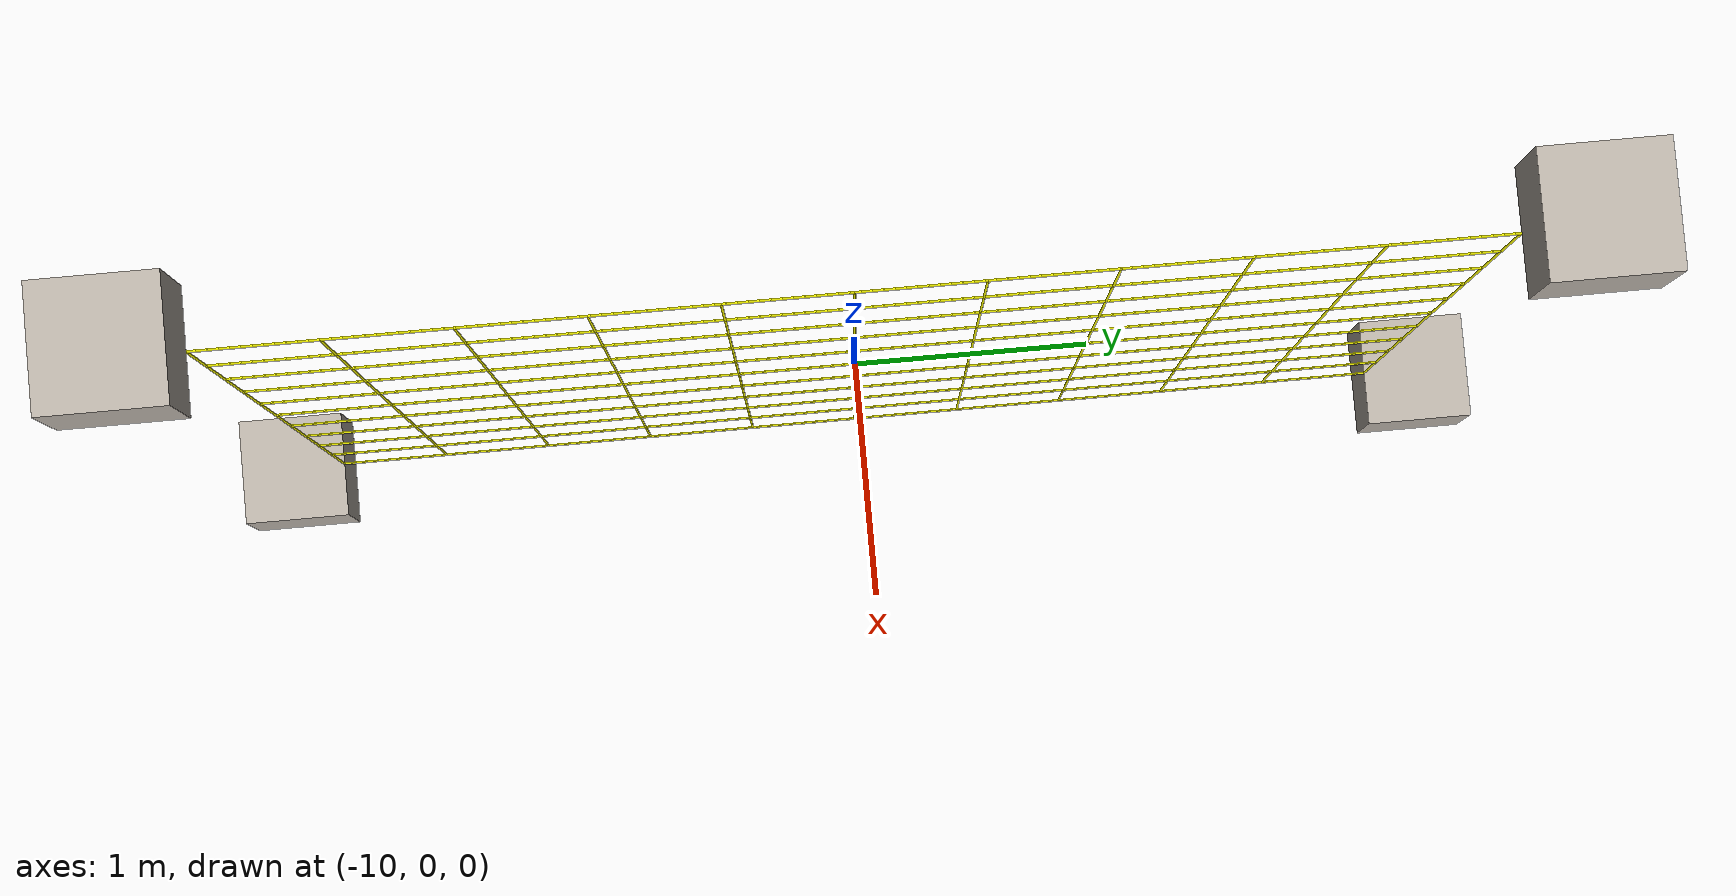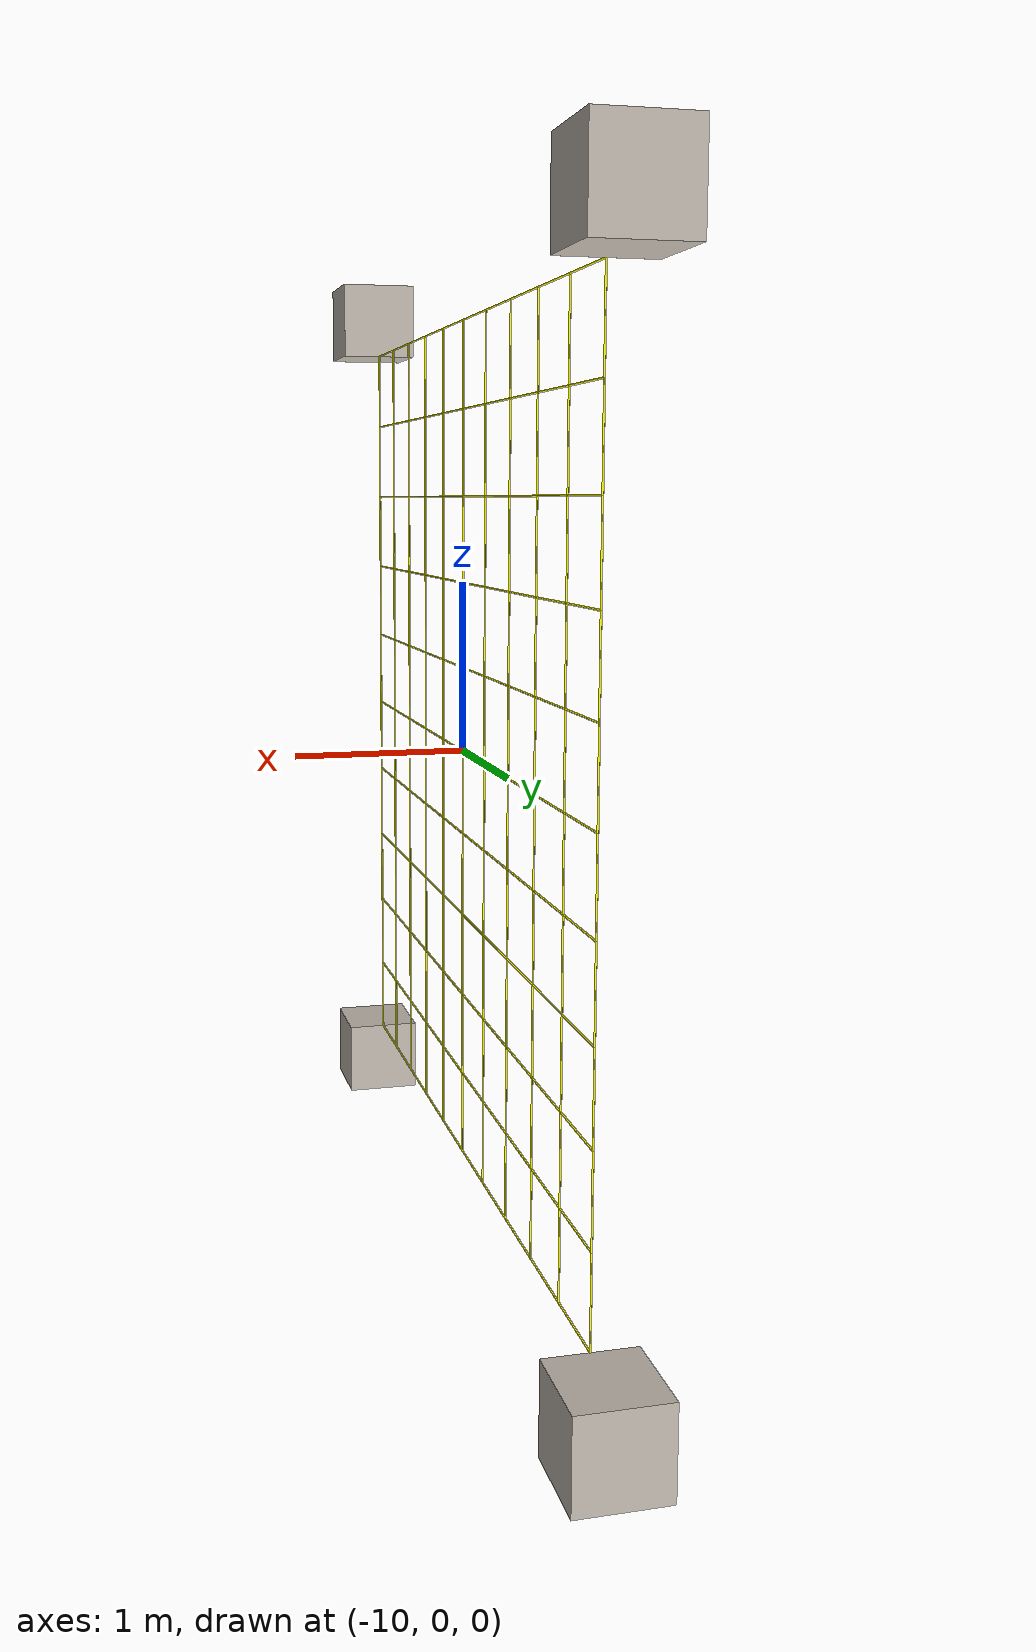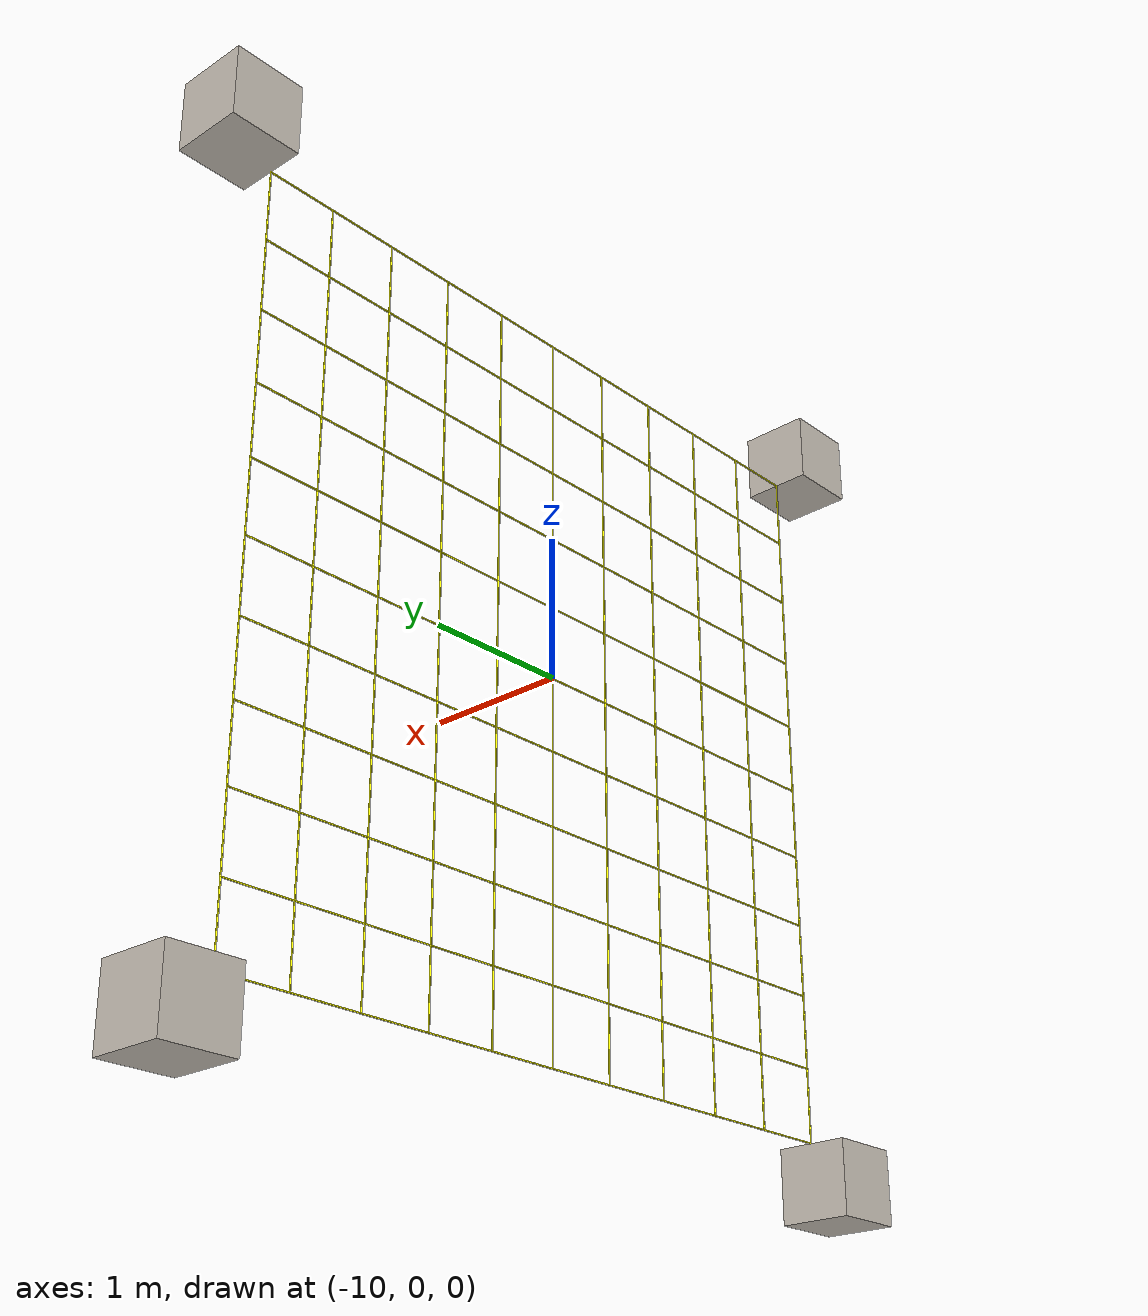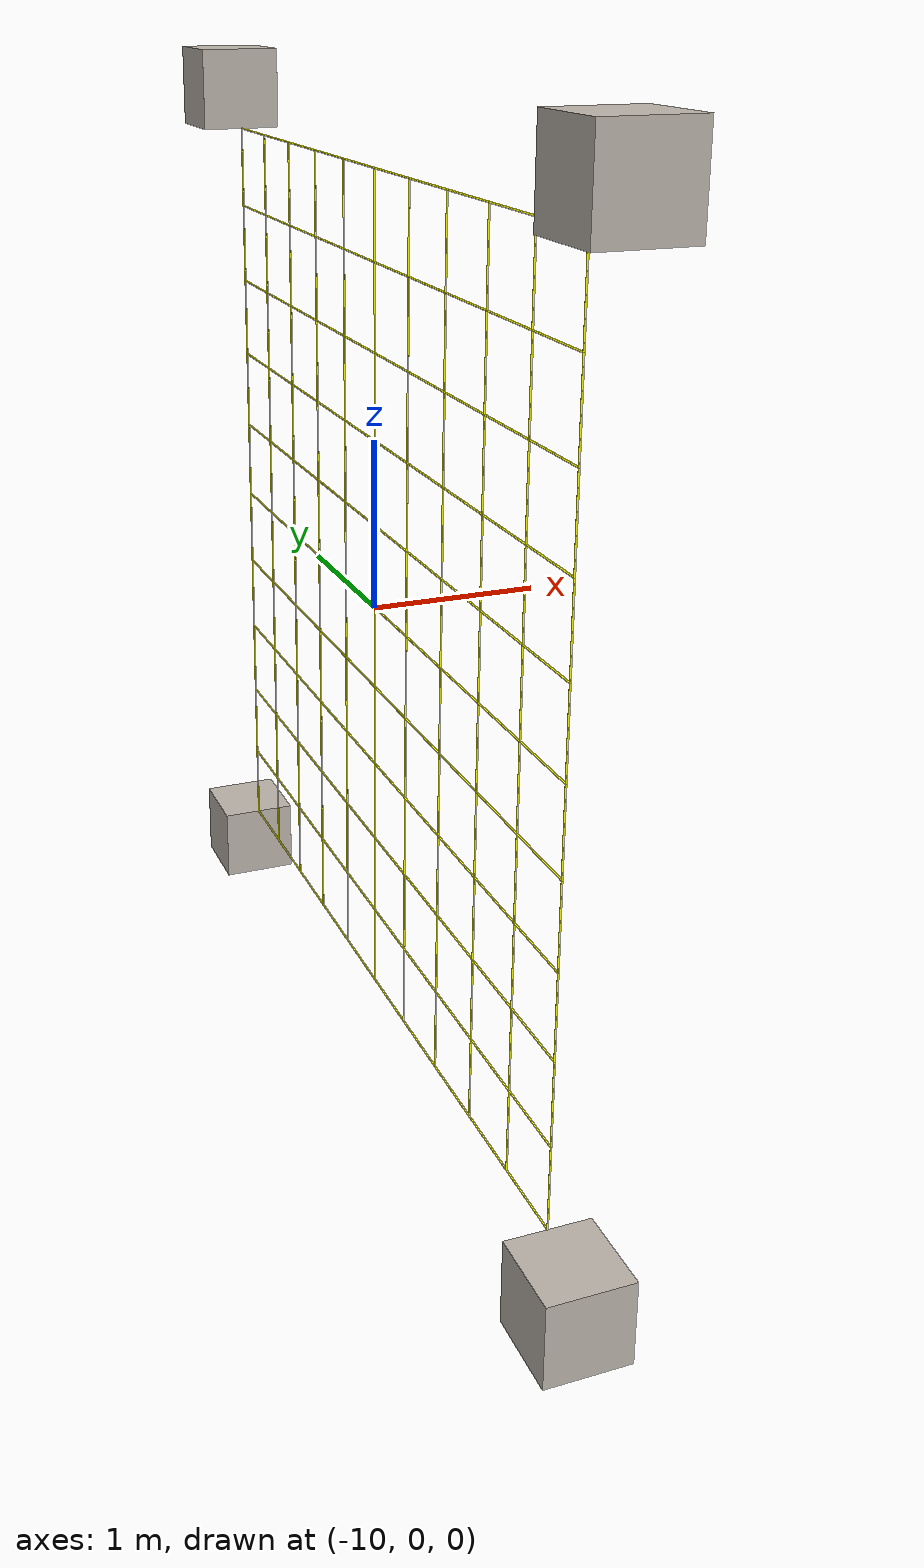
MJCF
<?xml version='1.0' encoding='utf-8'?>
<mujoco><option integrator="RK4" timestep="0.001" solver="PGS" /><include file="scene.xml" /><option gravity="0 0 0"><flag contact="disable" /></option><default><tendon limited="true" width="0.005" rgba="1 1 0 1" damping="0.07" stiffness="40" /></default><visual><global azimuth="-90" elevation="-40" /><headlight diffuse="1 1 1" /></visual><worldbody><camera name="closeup" pos="10 10 10" xyaxes="-0.4 0.9 0.000 -0.2 -0.1 0.9" /><body name="MU_0" pos="-10 2.75 2.75"><joint name="sat_0" type="free" /><inertial pos="-10 0 0" diaginertia="0.4167 0.4167 0.4167" mass="10" /><geom type="box" size=".25 .25 .25" material="satellite" mass="10" /><site pos="0 -0.25 -0.25" name="MU_0" type="sphere" size="0.0005" /></body><body name="MU_1" pos="-10 -2.75 2.75"><joint name="sat_1" type="free" /><inertial pos="-10 0 0" diaginertia="0.4167 0.4167 0.4167" mass="10" /><geom type="box" size=".25 .25 .25" material="satellite" mass="10" /><site pos="0 0.25 -0.25" name="MU_1" type="sphere" size="0.0005" /></body><body name="MU_2" pos="-10 2.75 -2.75"><joint name="sat_2" type="free" /><inertial pos="-10 0 0" diaginertia="0.4167 0.4167 0.4167" mass="10" /><geom type="box" size=".25 .25 .25" material="satellite" mass="10" /><site pos="0 -0.25 0.25" name="MU_2" type="sphere" size="0.0005" /></body><body name="MU_3" pos="-10 -2.75 -2.75"><joint name="sat_3" type="free" /><inertial pos="-10 0 0" diaginertia="0.4167 0.4167 0.4167" mass="10" /><geom type="box" size=".25 .25 .25" material="satellite" mass="10" /><site pos="0 0.25 0.25" name="MU_3" type="sphere" size="0.0005" /></body><body name="node_0_1" pos="-10 2.0 2.5"><joint type="free" /><geom type="sphere" size="0.0005" rgba="1 0 0 1" mass="0.0011" /><site name="node_0_1" type="sphere" size="0.0005" /></body><body name="node_0_2" pos="-10 1.5 2.5"><joint type="free" /><geom type="sphere" size="0.0005" rgba="1 0 0 1" mass="0.0011" /><site name="node_0_2" type="sphere" size="0.0005" /></body><body name="node_0_3" pos="-10 1.0 2.5"><joint type="free" /><geom type="sphere" size="0.0005" rgba="1 0 0 1" mass="0.0011" /><site name="node_0_3" type="sphere" size="0.0005" /></body><body name="node_0_4" pos="-10 0.5 2.5"><joint type="free" /><geom type="sphere" size="0.0005" rgba="1 0 0 1" mass="0.0011" /><site name="node_0_4" type="sphere" size="0.0005" /></body><body name="node_0_5" pos="-10 0.0 2.5"><joint type="free" /><geom type="sphere" size="0.0005" rgba="1 0 0 1" mass="0.0011" /><site name="node_0_5" type="sphere" size="0.0005" /></body><body name="node_0_6" pos="-10 -0.5 2.5"><joint type="free" /><geom type="sphere" size="0.0005" rgba="1 0 0 1" mass="0.0011" /><site name="node_0_6" type="sphere" size="0.0005" /></body><body name="node_0_7" pos="-10 -1.0 2.5"><joint type="free" /><geom type="sphere" size="0.0005" rgba="1 0 0 1" mass="0.0011" /><site name="node_0_7" type="sphere" size="0.0005" /></body><body name="node_0_8" pos="-10 -1.5 2.5"><joint type="free" /><geom type="sphere" size="0.0005" rgba="1 0 0 1" mass="0.0011" /><site name="node_0_8" type="sphere" size="0.0005" /></body><body name="node_0_9" pos="-10 -2.0 2.5"><joint type="free" /><geom type="sphere" size="0.0005" rgba="1 0 0 1" mass="0.0011" /><site name="node_0_9" type="sphere" size="0.0005" /></body><body name="node_1_0" pos="-10 2.5 2.0"><joint type="free" /><geom type="sphere" size="0.0005" rgba="1 0 0 1" mass="0.0011" /><site name="node_1_0" type="sphere" size="0.0005" /></body><body name="node_1_1" pos="-10 2.0 2.0"><joint type="free" /><geom type="sphere" size="0.0005" rgba="1 0 0 1" mass="0.0011" /><site name="node_1_1" type="sphere" size="0.0005" /></body><body name="node_1_2" pos="-10 1.5 2.0"><joint type="free" /><geom type="sphere" size="0.0005" rgba="1 0 0 1" mass="0.0011" /><site name="node_1_2" type="sphere" size="0.0005" /></body><body name="node_1_3" pos="-10 1.0 2.0"><joint type="free" /><geom type="sphere" size="0.0005" rgba="1 0 0 1" mass="0.0011" /><site name="node_1_3" type="sphere" size="0.0005" /></body><body name="node_1_4" pos="-10 0.5 2.0"><joint type="free" /><geom type="sphere" size="0.0005" rgba="1 0 0 1" mass="0.0011" /><site name="node_1_4" type="sphere" size="0.0005" /></body><body name="node_1_5" pos="-10 0.0 2.0"><joint type="free" /><geom type="sphere" size="0.0005" rgba="1 0 0 1" mass="0.0011" /><site name="node_1_5" type="sphere" size="0.0005" /></body><body name="node_1_6" pos="-10 -0.5 2.0"><joint type="free" /><geom type="sphere" size="0.0005" rgba="1 0 0 1" mass="0.0011" /><site name="node_1_6" type="sphere" size="0.0005" /></body><body name="node_1_7" pos="-10 -1.0 2.0"><joint type="free" /><geom type="sphere" size="0.0005" rgba="1 0 0 1" mass="0.0011" /><site name="node_1_7" type="sphere" size="0.0005" /></body><body name="node_1_8" pos="-10 -1.5 2.0"><joint type="free" /><geom type="sphere" size="0.0005" rgba="1 0 0 1" mass="0.0011" /><site name="node_1_8" type="sphere" size="0.0005" /></body><body name="node_1_9" pos="-10 -2.0 2.0"><joint type="free" /><geom type="sphere" size="0.0005" rgba="1 0 0 1" mass="0.0011" /><site name="node_1_9" type="sphere" size="0.0005" /></body><body name="node_1_10" pos="-10 -2.5 2.0"><joint type="free" /><geom type="sphere" size="0.0005" rgba="1 0 0 1" mass="0.0011" /><site name="node_1_10" type="sphere" size="0.0005" /></body><body name="node_2_0" pos="-10 2.5 1.5"><joint type="free" /><geom type="sphere" size="0.0005" rgba="1 0 0 1" mass="0.0011" /><site name="node_2_0" type="sphere" size="0.0005" /></body><body name="node_2_1" pos="-10 2.0 1.5"><joint type="free" /><geom type="sphere" size="0.0005" rgba="1 0 0 1" mass="0.0011" /><site name="node_2_1" type="sphere" size="0.0005" /></body><body name="node_2_2" pos="-10 1.5 1.5"><joint type="free" /><geom type="sphere" size="0.0005" rgba="1 0 0 1" mass="0.0011" /><site name="node_2_2" type="sphere" size="0.0005" /></body><body name="node_2_3" pos="-10 1.0 1.5"><joint type="free" /><geom type="sphere" size="0.0005" rgba="1 0 0 1" mass="0.0011" /><site name="node_2_3" type="sphere" size="0.0005" /></body><body name="node_2_4" pos="-10 0.5 1.5"><joint type="free" /><geom type="sphere" size="0.0005" rgba="1 0 0 1" mass="0.0011" /><site name="node_2_4" type="sphere" size="0.0005" /></body><body name="node_2_5" pos="-10 0.0 1.5"><joint type="free" /><geom type="sphere" size="0.0005" rgba="1 0 0 1" mass="0.0011" /><site name="node_2_5" type="sphere" size="0.0005" /></body><body name="node_2_6" pos="-10 -0.5 1.5"><joint type="free" /><geom type="sphere" size="0.0005" rgba="1 0 0 1" mass="0.0011" /><site name="node_2_6" type="sphere" size="0.0005" /></body><body name="node_2_7" pos="-10 -1.0 1.5"><joint type="free" /><geom type="sphere" size="0.0005" rgba="1 0 0 1" mass="0.0011" /><site name="node_2_7" type="sphere" size="0.0005" /></body><body name="node_2_8" pos="-10 -1.5 1.5"><joint type="free" /><geom type="sphere" size="0.0005" rgba="1 0 0 1" mass="0.0011" /><site name="node_2_8" type="sphere" size="0.0005" /></body><body name="node_2_9" pos="-10 -2.0 1.5"><joint type="free" /><geom type="sphere" size="0.0005" rgba="1 0 0 1" mass="0.0011" /><site name="node_2_9" type="sphere" size="0.0005" /></body><body name="node_2_10" pos="-10 -2.5 1.5"><joint type="free" /><geom type="sphere" size="0.0005" rgba="1 0 0 1" mass="0.0011" /><site name="node_2_10" type="sphere" size="0.0005" /></body><body name="node_3_0" pos="-10 2.5 1.0"><joint type="free" /><geom type="sphere" size="0.0005" rgba="1 0 0 1" mass="0.0011" /><site name="node_3_0" type="sphere" size="0.0005" /></body><body name="node_3_1" pos="-10 2.0 1.0"><joint type="free" /><geom type="sphere" size="0.0005" rgba="1 0 0 1" mass="0.0011" /><site name="node_3_1" type="sphere" size="0.0005" /></body><body name="node_3_2" pos="-10 1.5 1.0"><joint type="free" /><geom type="sphere" size="0.0005" rgba="1 0 0 1" mass="0.0011" /><site name="node_3_2" type="sphere" size="0.0005" /></body><body name="node_3_3" pos="-10 1.0 1.0"><joint type="free" /><geom type="sphere" size="0.0005" rgba="1 0 0 1" mass="0.0011" /><site name="node_3_3" type="sphere" size="0.0005" /></body><body name="node_3_4" pos="-10 0.5 1.0"><joint type="free" /><geom type="sphere" size="0.0005" rgba="1 0 0 1" mass="0.0011" /><site name="node_3_4" type="sphere" size="0.0005" /></body><body name="node_3_5" pos="-10 0.0 1.0"><joint type="free" /><geom type="sphere" size="0.0005" rgba="1 0 0 1" mass="0.0011" /><site name="node_3_5" type="sphere" size="0.0005" /></body><body name="node_3_6" pos="-10 -0.5 1.0"><joint type="free" /><geom type="sphere" size="0.0005" rgba="1 0 0 1" mass="0.0011" /><site name="node_3_6" type="sphere" size="0.0005" /></body><body name="node_3_7" pos="-10 -1.0 1.0"><joint type="free" /><geom type="sphere" size="0.0005" rgba="1 0 0 1" mass="0.0011" /><site name="node_3_7" type="sphere" size="0.0005" /></body><body name="node_3_8" pos="-10 -1.5 1.0"><joint type="free" /><geom type="sphere" size="0.0005" rgba="1 0 0 1" mass="0.0011" /><site name="node_3_8" type="sphere" size="0.0005" /></body><body name="node_3_9" pos="-10 -2.0 1.0"><joint type="free" /><geom type="sphere" size="0.0005" rgba="1 0 0 1" mass="0.0011" /><site name="node_3_9" type="sphere" size="0.0005" /></body><body name="node_3_10" pos="-10 -2.5 1.0"><joint type="free" /><geom type="sphere" size="0.0005" rgba="1 0 0 1" mass="0.0011" /><site name="node_3_10" type="sphere" size="0.0005" /></body><body name="node_4_0" pos="-10 2.5 0.5"><joint type="free" /><geom type="sphere" size="0.0005" rgba="1 0 0 1" mass="0.0011" /><site name="node_4_0" type="sphere" size="0.0005" /></body><body name="node_4_1" pos="-10 2.0 0.5"><joint type="free" /><geom type="sphere" size="0.0005" rgba="1 0 0 1" mass="0.0011" /><site name="node_4_1" type="sphere" size="0.0005" /></body><body name="node_4_2" pos="-10 1.5 0.5"><joint type="free" /><geom type="sphere" size="0.0005" rgba="1 0 0 1" mass="0.0011" /><site name="node_4_2" type="sphere" size="0.0005" /></body><body name="node_4_3" pos="-10 1.0 0.5"><joint type="free" /><geom type="sphere" size="0.0005" rgba="1 0 0 1" mass="0.0011" /><site name="node_4_3" type="sphere" size="0.0005" /></body><body name="node_4_4" pos="-10 0.5 0.5"><joint type="free" /><geom type="sphere" size="0.0005" rgba="1 0 0 1" mass="0.0011" /><site name="node_4_4" type="sphere" size="0.0005" /></body><body name="node_4_5" pos="-10 0.0 0.5"><joint type="free" /><geom type="sphere" size="0.0005" rgba="1 0 0 1" mass="0.0011" /><site name="node_4_5" type="sphere" size="0.0005" /></body><body name="node_4_6" pos="-10 -0.5 0.5"><joint type="free" /><geom type="sphere" size="0.0005" rgba="1 0 0 1" mass="0.0011" /><site name="node_4_6" type="sphere" size="0.0005" /></body><body name="node_4_7" pos="-10 -1.0 0.5"><joint type="free" /><geom type="sphere" size="0.0005" rgba="1 0 0 1" mass="0.0011" /><site name="node_4_7" type="sphere" size="0.0005" /></body><body name="node_4_8" pos="-10 -1.5 0.5"><joint type="free" /><geom type="sphere" size="0.0005" rgba="1 0 0 1" mass="0.0011" /><site name="node_4_8" type="sphere" size="0.0005" /></body><body name="node_4_9" pos="-10 -2.0 0.5"><joint type="free" /><geom type="sphere" size="0.0005" rgba="1 0 0 1" mass="0.0011" /><site name="node_4_9" type="sphere" size="0.0005" /></body><body name="node_4_10" pos="-10 -2.5 0.5"><joint type="free" /><geom type="sphere" size="0.0005" rgba="1 0 0 1" mass="0.0011" /><site name="node_4_10" type="sphere" size="0.0005" /></body><body name="node_5_0" pos="-10 2.5 0.0"><joint type="free" /><geom type="sphere" size="0.0005" rgba="1 0 0 1" mass="0.0011" /><site name="node_5_0" type="sphere" size="0.0005" /></body><body name="node_5_1" pos="-10 2.0 0.0"><joint type="free" /><geom type="sphere" size="0.0005" rgba="1 0 0 1" mass="0.0011" /><site name="node_5_1" type="sphere" size="0.0005" /></body><body name="node_5_2" pos="-10 1.5 0.0"><joint type="free" /><geom type="sphere" size="0.0005" rgba="1 0 0 1" mass="0.0011" /><site name="node_5_2" type="sphere" size="0.0005" /></body><body name="node_5_3" pos="-10 1.0 0.0"><joint type="free" /><geom type="sphere" size="0.0005" rgba="1 0 0 1" mass="0.0011" /><site name="node_5_3" type="sphere" size="0.0005" /></body><body name="node_5_4" pos="-10 0.5 0.0"><joint type="free" /><geom type="sphere" size="0.0005" rgba="1 0 0 1" mass="0.0011" /><site name="node_5_4" type="sphere" size="0.0005" /></body><body name="node_5_5" pos="-10 0.0 0.0"><joint type="free" /><geom type="sphere" size="0.0005" rgba="1 0 0 1" mass="0.0011" /><site name="node_5_5" type="sphere" size="0.0005" /></body><body name="node_5_6" pos="-10 -0.5 0.0"><joint type="free" /><geom type="sphere" size="0.0005" rgba="1 0 0 1" mass="0.0011" /><site name="node_5_6" type="sphere" size="0.0005" /></body><body name="node_5_7" pos="-10 -1.0 0.0"><joint type="free" /><geom type="sphere" size="0.0005" rgba="1 0 0 1" mass="0.0011" /><site name="node_5_7" type="sphere" size="0.0005" /></body><body name="node_5_8" pos="-10 -1.5 0.0"><joint type="free" /><geom type="sphere" size="0.0005" rgba="1 0 0 1" mass="0.0011" /><site name="node_5_8" type="sphere" size="0.0005" /></body><body name="node_5_9" pos="-10 -2.0 0.0"><joint type="free" /><geom type="sphere" size="0.0005" rgba="1 0 0 1" mass="0.0011" /><site name="node_5_9" type="sphere" size="0.0005" /></body><body name="node_5_10" pos="-10 -2.5 0.0"><joint type="free" /><geom type="sphere" size="0.0005" rgba="1 0 0 1" mass="0.0011" /><site name="node_5_10" type="sphere" size="0.0005" /></body><body name="node_6_0" pos="-10 2.5 -0.5"><joint type="free" /><geom type="sphere" size="0.0005" rgba="1 0 0 1" mass="0.0011" /><site name="node_6_0" type="sphere" size="0.0005" /></body><body name="node_6_1" pos="-10 2.0 -0.5"><joint type="free" /><geom type="sphere" size="0.0005" rgba="1 0 0 1" mass="0.0011" /><site name="node_6_1" type="sphere" size="0.0005" /></body><body name="node_6_2" pos="-10 1.5 -0.5"><joint type="free" /><geom type="sphere" size="0.0005" rgba="1 0 0 1" mass="0.0011" /><site name="node_6_2" type="sphere" size="0.0005" /></body><body name="node_6_3" pos="-10 1.0 -0.5"><joint type="free" /><geom type="sphere" size="0.0005" rgba="1 0 0 1" mass="0.0011" /><site name="node_6_3" type="sphere" size="0.0005" /></body><body name="node_6_4" pos="-10 0.5 -0.5"><joint type="free" /><geom type="sphere" size="0.0005" rgba="1 0 0 1" mass="0.0011" /><site name="node_6_4" type="sphere" size="0.0005" /></body><body name="node_6_5" pos="-10 0.0 -0.5"><joint type="free" /><geom type="sphere" size="0.0005" rgba="1 0 0 1" mass="0.0011" /><site name="node_6_5" type="sphere" size="0.0005" /></body><body name="node_6_6" pos="-10 -0.5 -0.5"><joint type="free" /><geom type="sphere" size="0.0005" rgba="1 0 0 1" mass="0.0011" /><site name="node_6_6" type="sphere" size="0.0005" /></body><body name="node_6_7" pos="-10 -1.0 -0.5"><joint type="free" /><geom type="sphere" size="0.0005" rgba="1 0 0 1" mass="0.0011" /><site name="node_6_7" type="sphere" size="0.0005" /></body><body name="node_6_8" pos="-10 -1.5 -0.5"><joint type="free" /><geom type="sphere" size="0.0005" rgba="1 0 0 1" mass="0.0011" /><site name="node_6_8" type="sphere" size="0.0005" /></body><body name="node_6_9" pos="-10 -2.0 -0.5"><joint type="free" /><geom type="sphere" size="0.0005" rgba="1 0 0 1" mass="0.0011" /><site name="node_6_9" type="sphere" size="0.0005" /></body><body name="node_6_10" pos="-10 -2.5 -0.5"><joint type="free" /><geom type="sphere" size="0.0005" rgba="1 0 0 1" mass="0.0011" /><site name="node_6_10" type="sphere" size="0.0005" /></body><body name="node_7_0" pos="-10 2.5 -1.0"><joint type="free" /><geom type="sphere" size="0.0005" rgba="1 0 0 1" mass="0.0011" /><site name="node_7_0" type="sphere" size="0.0005" /></body><body name="node_7_1" pos="-10 2.0 -1.0"><joint type="free" /><geom type="sphere" size="0.0005" rgba="1 0 0 1" mass="0.0011" /><site name="node_7_1" type="sphere" size="0.0005" /></body><body name="node_7_2" pos="-10 1.5 -1.0"><joint type="free" /><geom type="sphere" size="0.0005" rgba="1 0 0 1" mass="0.0011" /><site name="node_7_2" type="sphere" size="0.0005" /></body><body name="node_7_3" pos="-10 1.0 -1.0"><joint type="free" /><geom type="sphere" size="0.0005" rgba="1 0 0 1" mass="0.0011" /><site name="node_7_3" type="sphere" size="0.0005" /></body><body name="node_7_4" pos="-10 0.5 -1.0"><joint type="free" /><geom type="sphere" size="0.0005" rgba="1 0 0 1" mass="0.0011" /><site name="node_7_4" type="sphere" size="0.0005" /></body><body name="node_7_5" pos="-10 0.0 -1.0"><joint type="free" /><geom type="sphere" size="0.0005" rgba="1 0 0 1" mass="0.0011" /><site name="node_7_5" type="sphere" size="0.0005" /></body><body name="node_7_6" pos="-10 -0.5 -1.0"><joint type="free" /><geom type="sphere" size="0.0005" rgba="1 0 0 1" mass="0.0011" /><site name="node_7_6" type="sphere" size="0.0005" /></body><body name="node_7_7" pos="-10 -1.0 -1.0"><joint type="free" /><geom type="sphere" size="0.0005" rgba="1 0 0 1" mass="0.0011" /><site name="node_7_7" type="sphere" size="0.0005" /></body><body name="node_7_8" pos="-10 -1.5 -1.0"><joint type="free" /><geom type="sphere" size="0.0005" rgba="1 0 0 1" mass="0.0011" /><site name="node_7_8" type="sphere" size="0.0005" /></body><body name="node_7_9" pos="-10 -2.0 -1.0"><joint type="free" /><geom type="sphere" size="0.0005" rgba="1 0 0 1" mass="0.0011" /><site name="node_7_9" type="sphere" size="0.0005" /></body><body name="node_7_10" pos="-10 -2.5 -1.0"><joint type="free" /><geom type="sphere" size="0.0005" rgba="1 0 0 1" mass="0.0011" /><site name="node_7_10" type="sphere" size="0.0005" /></body><body name="node_8_0" pos="-10 2.5 -1.5"><joint type="free" /><geom type="sphere" size="0.0005" rgba="1 0 0 1" mass="0.0011" /><site name="node_8_0" type="sphere" size="0.0005" /></body><body name="node_8_1" pos="-10 2.0 -1.5"><joint type="free" /><geom type="sphere" size="0.0005" rgba="1 0 0 1" mass="0.0011" /><site name="node_8_1" type="sphere" size="0.0005" /></body><body name="node_8_2" pos="-10 1.5 -1.5"><joint type="free" /><geom type="sphere" size="0.0005" rgba="1 0 0 1" mass="0.0011" /><site name="node_8_2" type="sphere" size="0.0005" /></body><body name="node_8_3" pos="-10 1.0 -1.5"><joint type="free" /><geom type="sphere" size="0.0005" rgba="1 0 0 1" mass="0.0011" /><site name="node_8_3" type="sphere" size="0.0005" /></body><body name="node_8_4" pos="-10 0.5 -1.5"><joint type="free" /><geom type="sphere" size="0.0005" rgba="1 0 0 1" mass="0.0011" /><site name="node_8_4" type="sphere" size="0.0005" /></body><body name="node_8_5" pos="-10 0.0 -1.5"><joint type="free" /><geom type="sphere" size="0.0005" rgba="1 0 0 1" mass="0.0011" /><site name="node_8_5" type="sphere" size="0.0005" /></body><body name="node_8_6" pos="-10 -0.5 -1.5"><joint type="free" /><geom type="sphere" size="0.0005" rgba="1 0 0 1" mass="0.0011" /><site name="node_8_6" type="sphere" size="0.0005" /></body><body name="node_8_7" pos="-10 -1.0 -1.5"><joint type="free" /><geom type="sphere" size="0.0005" rgba="1 0 0 1" mass="0.0011" /><site name="node_8_7" type="sphere" size="0.0005" /></body><body name="node_8_8" pos="-10 -1.5 -1.5"><joint type="free" /><geom type="sphere" size="0.0005" rgba="1 0 0 1" mass="0.0011" /><site name="node_8_8" type="sphere" size="0.0005" /></body><body name="node_8_9" pos="-10 -2.0 -1.5"><joint type="free" /><geom type="sphere" size="0.0005" rgba="1 0 0 1" mass="0.0011" /><site name="node_8_9" type="sphere" size="0.0005" /></body><body name="node_8_10" pos="-10 -2.5 -1.5"><joint type="free" /><geom type="sphere" size="0.0005" rgba="1 0 0 1" mass="0.0011" /><site name="node_8_10" type="sphere" size="0.0005" /></body><body name="node_9_0" pos="-10 2.5 -2.0"><joint type="free" /><geom type="sphere" size="0.0005" rgba="1 0 0 1" mass="0.0011" /><site name="node_9_0" type="sphere" size="0.0005" /></body><body name="node_9_1" pos="-10 2.0 -2.0"><joint type="free" /><geom type="sphere" size="0.0005" rgba="1 0 0 1" mass="0.0011" /><site name="node_9_1" type="sphere" size="0.0005" /></body><body name="node_9_2" pos="-10 1.5 -2.0"><joint type="free" /><geom type="sphere" size="0.0005" rgba="1 0 0 1" mass="0.0011" /><site name="node_9_2" type="sphere" size="0.0005" /></body><body name="node_9_3" pos="-10 1.0 -2.0"><joint type="free" /><geom type="sphere" size="0.0005" rgba="1 0 0 1" mass="0.0011" /><site name="node_9_3" type="sphere" size="0.0005" /></body><body name="node_9_4" pos="-10 0.5 -2.0"><joint type="free" /><geom type="sphere" size="0.0005" rgba="1 0 0 1" mass="0.0011" /><site name="node_9_4" type="sphere" size="0.0005" /></body><body name="node_9_5" pos="-10 0.0 -2.0"><joint type="free" /><geom type="sphere" size="0.0005" rgba="1 0 0 1" mass="0.0011" /><site name="node_9_5" type="sphere" size="0.0005" /></body><body name="node_9_6" pos="-10 -0.5 -2.0"><joint type="free" /><geom type="sphere" size="0.0005" rgba="1 0 0 1" mass="0.0011" /><site name="node_9_6" type="sphere" size="0.0005" /></body><body name="node_9_7" pos="-10 -1.0 -2.0"><joint type="free" /><geom type="sphere" size="0.0005" rgba="1 0 0 1" mass="0.0011" /><site name="node_9_7" type="sphere" size="0.0005" /></body><body name="node_9_8" pos="-10 -1.5 -2.0"><joint type="free" /><geom type="sphere" size="0.0005" rgba="1 0 0 1" mass="0.0011" /><site name="node_9_8" type="sphere" size="0.0005" /></body><body name="node_9_9" pos="-10 -2.0 -2.0"><joint type="free" /><geom type="sphere" size="0.0005" rgba="1 0 0 1" mass="0.0011" /><site name="node_9_9" type="sphere" size="0.0005" /></body><body name="node_9_10" pos="-10 -2.5 -2.0"><joint type="free" /><geom type="sphere" size="0.0005" rgba="1 0 0 1" mass="0.0011" /><site name="node_9_10" type="sphere" size="0.0005" /></body><body name="node_10_1" pos="-10 2.0 -2.5"><joint type="free" /><geom type="sphere" size="0.0005" rgba="1 0 0 1" mass="0.0011" /><site name="node_10_1" type="sphere" size="0.0005" /></body><body name="node_10_2" pos="-10 1.5 -2.5"><joint type="free" /><geom type="sphere" size="0.0005" rgba="1 0 0 1" mass="0.0011" /><site name="node_10_2" type="sphere" size="0.0005" /></body><body name="node_10_3" pos="-10 1.0 -2.5"><joint type="free" /><geom type="sphere" size="0.0005" rgba="1 0 0 1" mass="0.0011" /><site name="node_10_3" type="sphere" size="0.0005" /></body><body name="node_10_4" pos="-10 0.5 -2.5"><joint type="free" /><geom type="sphere" size="0.0005" rgba="1 0 0 1" mass="0.0011" /><site name="node_10_4" type="sphere" size="0.0005" /></body><body name="node_10_5" pos="-10 0.0 -2.5"><joint type="free" /><geom type="sphere" size="0.0005" rgba="1 0 0 1" mass="0.0011" /><site name="node_10_5" type="sphere" size="0.0005" /></body><body name="node_10_6" pos="-10 -0.5 -2.5"><joint type="free" /><geom type="sphere" size="0.0005" rgba="1 0 0 1" mass="0.0011" /><site name="node_10_6" type="sphere" size="0.0005" /></body><body name="node_10_7" pos="-10 -1.0 -2.5"><joint type="free" /><geom type="sphere" size="0.0005" rgba="1 0 0 1" mass="0.0011" /><site name="node_10_7" type="sphere" size="0.0005" /></body><body name="node_10_8" pos="-10 -1.5 -2.5"><joint type="free" /><geom type="sphere" size="0.0005" rgba="1 0 0 1" mass="0.0011" /><site name="node_10_8" type="sphere" size="0.0005" /></body><body name="node_10_9" pos="-10 -2.0 -2.5"><joint type="free" /><geom type="sphere" size="0.0005" rgba="1 0 0 1" mass="0.0011" /><site name="node_10_9" type="sphere" size="0.0005" /></body></worldbody><tendon><spatial range="0 0.51" springlength="0 0.5"><site site="MU_0" /><site site="node_0_1" /></spatial><spatial range="0 0.51" springlength="0 0.5"><site site="node_0_1" /><site site="node_0_2" /></spatial><spatial range="0 0.51" springlength="0 0.5"><site site="node_0_2" /><site site="node_0_3" /></spatial><spatial range="0 0.51" springlength="0 0.5"><site site="node_0_3" /><site site="node_0_4" /></spatial><spatial range="0 0.51" springlength="0 0.5"><site site="node_0_4" /><site site="node_0_5" /></spatial><spatial range="0 0.51" springlength="0 0.5"><site site="node_0_5" /><site site="node_0_6" /></spatial><spatial range="0 0.51" springlength="0 0.5"><site site="node_0_6" /><site site="node_0_7" /></spatial><spatial range="0 0.51" springlength="0 0.5"><site site="node_0_7" /><site site="node_0_8" /></spatial><spatial range="0 0.51" springlength="0 0.5"><site site="node_0_8" /><site site="node_0_9" /></spatial><spatial range="0 0.51" springlength="0 0.5"><site site="node_0_9" /><site site="MU_1" /></spatial><spatial range="0 0.51" springlength="0 0.5"><site site="node_1_0" /><site site="node_1_1" /></spatial><spatial range="0 0.51" springlength="0 0.5"><site site="node_1_1" /><site site="node_1_2" /></spatial><spatial range="0 0.51" springlength="0 0.5"><site site="node_1_2" /><site site="node_1_3" /></spatial><spatial range="0 0.51" springlength="0 0.5"><site site="node_1_3" /><site site="node_1_4" /></spatial><spatial range="0 0.51" springlength="0 0.5"><site site="node_1_4" /><site site="node_1_5" /></spatial><spatial range="0 0.51" springlength="0 0.5"><site site="node_1_5" /><site site="node_1_6" /></spatial><spatial range="0 0.51" springlength="0 0.5"><site site="node_1_6" /><site site="node_1_7" /></spatial><spatial range="0 0.51" springlength="0 0.5"><site site="node_1_7" /><site site="node_1_8" /></spatial><spatial range="0 0.51" springlength="0 0.5"><site site="node_1_8" /><site site="node_1_9" /></spatial><spatial range="0 0.51" springlength="0 0.5"><site site="node_1_9" /><site site="node_1_10" /></spatial><spatial range="0 0.51" springlength="0 0.5"><site site="node_2_0" /><site site="node_2_1" /></spatial><spatial range="0 0.51" springlength="0 0.5"><site site="node_2_1" /><site site="node_2_2" /></spatial><spatial range="0 0.51" springlength="0 0.5"><site site="node_2_2" /><site site="node_2_3" /></spatial><spatial range="0 0.51" springlength="0 0.5"><site site="node_2_3" /><site site="node_2_4" /></spatial><spatial range="0 0.51" springlength="0 0.5"><site site="node_2_4" /><site site="node_2_5" /></spatial><spatial range="0 0.51" springlength="0 0.5"><site site="node_2_5" /><site site="node_2_6" /></spatial><spatial range="0 0.51" springlength="0 0.5"><site site="node_2_6" /><site site="node_2_7" /></spatial><spatial range="0 0.51" springlength="0 0.5"><site site="node_2_7" /><site site="node_2_8" /></spatial><spatial range="0 0.51" springlength="0 0.5"><site site="node_2_8" /><site site="node_2_9" /></spatial><spatial range="0 0.51" springlength="0 0.5"><site site="node_2_9" /><site site="node_2_10" /></spatial><spatial range="0 0.51" springlength="0 0.5"><site site="node_3_0" /><site site="node_3_1" /></spatial><spatial range="0 0.51" springlength="0 0.5"><site site="node_3_1" /><site site="node_3_2" /></spatial><spatial range="0 0.51" springlength="0 0.5"><site site="node_3_2" /><site site="node_3_3" /></spatial><spatial range="0 0.51" springlength="0 0.5"><site site="node_3_3" /><site site="node_3_4" /></spatial><spatial range="0 0.51" springlength="0 0.5"><site site="node_3_4" /><site site="node_3_5" /></spatial><spatial range="0 0.51" springlength="0 0.5"><site site="node_3_5" /><site site="node_3_6" /></spatial><spatial range="0 0.51" springlength="0 0.5"><site site="node_3_6" /><site site="node_3_7" /></spatial><spatial range="0 0.51" springlength="0 0.5"><site site="node_3_7" /><site site="node_3_8" /></spatial><spatial range="0 0.51" springlength="0 0.5"><site site="node_3_8" /><site site="node_3_9" /></spatial><spatial range="0 0.51" springlength="0 0.5"><site site="node_3_9" /><site site="node_3_10" /></spatial><spatial range="0 0.51" springlength="0 0.5"><site site="node_4_0" /><site site="node_4_1" /></spatial><spatial range="0 0.51" springlength="0 0.5"><site site="node_4_1" /><site site="node_4_2" /></spatial><spatial range="0 0.51" springlength="0 0.5"><site site="node_4_2" /><site site="node_4_3" /></spatial><spatial range="0 0.51" springlength="0 0.5"><site site="node_4_3" /><site site="node_4_4" /></spatial><spatial range="0 0.51" springlength="0 0.5"><site site="node_4_4" /><site site="node_4_5" /></spatial><spatial range="0 0.51" springlength="0 0.5"><site site="node_4_5" /><site site="node_4_6" /></spatial><spatial range="0 0.51" springlength="0 0.5"><site site="node_4_6" /><site site="node_4_7" /></spatial><spatial range="0 0.51" springlength="0 0.5"><site site="node_4_7" /><site site="node_4_8" /></spatial><spatial range="0 0.51" springlength="0 0.5"><site site="node_4_8" /><site site="node_4_9" /></spatial><spatial range="0 0.51" springlength="0 0.5"><site site="node_4_9" /><site site="node_4_10" /></spatial><spatial range="0 0.51" springlength="0 0.5"><site site="node_5_0" /><site site="node_5_1" /></spatial><spatial range="0 0.51" springlength="0 0.5"><site site="node_5_1" /><site site="node_5_2" /></spatial><spatial range="0 0.51" springlength="0 0.5"><site site="node_5_2" /><site site="node_5_3" /></spatial><spatial range="0 0.51" springlength="0 0.5"><site site="node_5_3" /><site site="node_5_4" /></spatial><spatial range="0 0.51" springlength="0 0.5"><site site="node_5_4" /><site site="node_5_5" /></spatial><spatial range="0 0.51" springlength="0 0.5"><site site="node_5_5" /><site site="node_5_6" /></spatial><spatial range="0 0.51" springlength="0 0.5"><site site="node_5_6" /><site site="node_5_7" /></spatial><spatial range="0 0.51" springlength="0 0.5"><site site="node_5_7" /><site site="node_5_8" /></spatial><spatial range="0 0.51" springlength="0 0.5"><site site="node_5_8" /><site site="node_5_9" /></spatial><spatial range="0 0.51" springlength="0 0.5"><site site="node_5_9" /><site site="node_5_10" /></spatial><spatial range="0 0.51" springlength="0 0.5"><site site="node_6_0" /><site site="node_6_1" /></spatial><spatial range="0 0.51" springlength="0 0.5"><site site="node_6_1" /><site site="node_6_2" /></spatial><spatial range="0 0.51" springlength="0 0.5"><site site="node_6_2" /><site site="node_6_3" /></spatial><spatial range="0 0.51" springlength="0 0.5"><site site="node_6_3" /><site site="node_6_4" /></spatial><spatial range="0 0.51" springlength="0 0.5"><site site="node_6_4" /><site site="node_6_5" /></spatial><spatial range="0 0.51" springlength="0 0.5"><site site="node_6_5" /><site site="node_6_6" /></spatial><spatial range="0 0.51" springlength="0 0.5"><site site="node_6_6" /><site site="node_6_7" /></spatial><spatial range="0 0.51" springlength="0 0.5"><site site="node_6_7" /><site site="node_6_8" /></spatial><spatial range="0 0.51" springlength="0 0.5"><site site="node_6_8" /><site site="node_6_9" /></spatial><spatial range="0 0.51" springlength="0 0.5"><site site="node_6_9" /><site site="node_6_10" /></spatial><spatial range="0 0.51" springlength="0 0.5"><site site="node_7_0" /><site site="node_7_1" /></spatial><spatial range="0 0.51" springlength="0 0.5"><site site="node_7_1" /><site site="node_7_2" /></spatial><spatial range="0 0.51" springlength="0 0.5"><site site="node_7_2" /><site site="node_7_3" /></spatial><spatial range="0 0.51" springlength="0 0.5"><site site="node_7_3" /><site site="node_7_4" /></spatial><spatial range="0 0.51" springlength="0 0.5"><site site="node_7_4" /><site site="node_7_5" /></spatial><spatial range="0 0.51" springlength="0 0.5"><site site="node_7_5" /><site site="node_7_6" /></spatial><spatial range="0 0.51" springlength="0 0.5"><site site="node_7_6" /><site site="node_7_7" /></spatial><spatial range="0 0.51" springlength="0 0.5"><site site="node_7_7" /><site site="node_7_8" /></spatial><spatial range="0 0.51" springlength="0 0.5"><site site="node_7_8" /><site site="node_7_9" /></spatial><spatial range="0 0.51" springlength="0 0.5"><site site="node_7_9" /><site site="node_7_10" /></spatial><spatial range="0 0.51" springlength="0 0.5"><site site="node_8_0" /><site site="node_8_1" /></spatial><spatial range="0 0.51" springlength="0 0.5"><site site="node_8_1" /><site site="node_8_2" /></spatial><spatial range="0 0.51" springlength="0 0.5"><site site="node_8_2" /><site site="node_8_3" /></spatial><spatial range="0 0.51" springlength="0 0.5"><site site="node_8_3" /><site site="node_8_4" /></spatial><spatial range="0 0.51" springlength="0 0.5"><site site="node_8_4" /><site site="node_8_5" /></spatial><spatial range="0 0.51" springlength="0 0.5"><site site="node_8_5" /><site site="node_8_6" /></spatial><spatial range="0 0.51" springlength="0 0.5"><site site="node_8_6" /><site site="node_8_7" /></spatial><spatial range="0 0.51" springlength="0 0.5"><site site="node_8_7" /><site site="node_8_8" /></spatial><spatial range="0 0.51" springlength="0 0.5"><site site="node_8_8" /><site site="node_8_9" /></spatial><spatial range="0 0.51" springlength="0 0.5"><site site="node_8_9" /><site site="node_8_10" /></spatial><spatial range="0 0.51" springlength="0 0.5"><site site="node_9_0" /><site site="node_9_1" /></spatial><spatial range="0 0.51" springlength="0 0.5"><site site="node_9_1" /><site site="node_9_2" /></spatial><spatial range="0 0.51" springlength="0 0.5"><site site="node_9_2" /><site site="node_9_3" /></spatial><spatial range="0 0.51" springlength="0 0.5"><site site="node_9_3" /><site site="node_9_4" /></spatial><spatial range="0 0.51" springlength="0 0.5"><site site="node_9_4" /><site site="node_9_5" /></spatial><spatial range="0 0.51" springlength="0 0.5"><site site="node_9_5" /><site site="node_9_6" /></spatial><spatial range="0 0.51" springlength="0 0.5"><site site="node_9_6" /><site site="node_9_7" /></spatial><spatial range="0 0.51" springlength="0 0.5"><site site="node_9_7" /><site site="node_9_8" /></spatial><spatial range="0 0.51" springlength="0 0.5"><site site="node_9_8" /><site site="node_9_9" /></spatial><spatial range="0 0.51" springlength="0 0.5"><site site="node_9_9" /><site site="node_9_10" /></spatial><spatial range="0 0.51" springlength="0 0.5"><site site="MU_2" /><site site="node_10_1" /></spatial><spatial range="0 0.51" springlength="0 0.5"><site site="node_10_1" /><site site="node_10_2" /></spatial><spatial range="0 0.51" springlength="0 0.5"><site site="node_10_2" /><site site="node_10_3" /></spatial><spatial range="0 0.51" springlength="0 0.5"><site site="node_10_3" /><site site="node_10_4" /></spatial><spatial range="0 0.51" springlength="0 0.5"><site site="node_10_4" /><site site="node_10_5" /></spatial><spatial range="0 0.51" springlength="0 0.5"><site site="node_10_5" /><site site="node_10_6" /></spatial><spatial range="0 0.51" springlength="0 0.5"><site site="node_10_6" /><site site="node_10_7" /></spatial><spatial range="0 0.51" springlength="0 0.5"><site site="node_10_7" /><site site="node_10_8" /></spatial><spatial range="0 0.51" springlength="0 0.5"><site site="node_10_8" /><site site="node_10_9" /></spatial><spatial range="0 0.51" springlength="0 0.5"><site site="node_10_9" /><site site="MU_3" /></spatial><spatial range="0 0.51" springlength="0 0.5"><site site="MU_0" /><site site="node_1_0" /></spatial><spatial range="0 0.51" springlength="0 0.5"><site site="node_0_1" /><site site="node_1_1" /></spatial><spatial range="0 0.51" springlength="0 0.5"><site site="node_0_2" /><site site="node_1_2" /></spatial><spatial range="0 0.51" springlength="0 0.5"><site site="node_0_3" /><site site="node_1_3" /></spatial><spatial range="0 0.51" springlength="0 0.5"><site site="node_0_4" /><site site="node_1_4" /></spatial><spatial range="0 0.51" springlength="0 0.5"><site site="node_0_5" /><site site="node_1_5" /></spatial><spatial range="0 0.51" springlength="0 0.5"><site site="node_0_6" /><site site="node_1_6" /></spatial><spatial range="0 0.51" springlength="0 0.5"><site site="node_0_7" /><site site="node_1_7" /></spatial><spatial range="0 0.51" springlength="0 0.5"><site site="node_0_8" /><site site="node_1_8" /></spatial><spatial range="0 0.51" springlength="0 0.5"><site site="node_0_9" /><site site="node_1_9" /></spatial><spatial range="0 0.51" springlength="0 0.5"><site site="MU_1" /><site site="node_1_10" /></spatial><spatial range="0 0.51" springlength="0 0.5"><site site="node_1_0" /><site site="node_2_0" /></spatial><spatial range="0 0.51" springlength="0 0.5"><site site="node_1_1" /><site site="node_2_1" /></spatial><spatial range="0 0.51" springlength="0 0.5"><site site="node_1_2" /><site site="node_2_2" /></spatial><spatial range="0 0.51" springlength="0 0.5"><site site="node_1_3" /><site site="node_2_3" /></spatial><spatial range="0 0.51" springlength="0 0.5"><site site="node_1_4" /><site site="node_2_4" /></spatial><spatial range="0 0.51" springlength="0 0.5"><site site="node_1_5" /><site site="node_2_5" /></spatial><spatial range="0 0.51" springlength="0 0.5"><site site="node_1_6" /><site site="node_2_6" /></spatial><spatial range="0 0.51" springlength="0 0.5"><site site="node_1_7" /><site site="node_2_7" /></spatial><spatial range="0 0.51" springlength="0 0.5"><site site="node_1_8" /><site site="node_2_8" /></spatial><spatial range="0 0.51" springlength="0 0.5"><site site="node_1_9" /><site site="node_2_9" /></spatial><spatial range="0 0.51" springlength="0 0.5"><site site="node_1_10" /><site site="node_2_10" /></spatial><spatial range="0 0.51" springlength="0 0.5"><site site="node_2_0" /><site site="node_3_0" /></spatial><spatial range="0 0.51" springlength="0 0.5"><site site="node_2_1" /><site site="node_3_1" /></spatial><spatial range="0 0.51" springlength="0 0.5"><site site="node_2_2" /><site site="node_3_2" /></spatial><spatial range="0 0.51" springlength="0 0.5"><site site="node_2_3" /><site site="node_3_3" /></spatial><spatial range="0 0.51" springlength="0 0.5"><site site="node_2_4" /><site site="node_3_4" /></spatial><spatial range="0 0.51" springlength="0 0.5"><site site="node_2_5" /><site site="node_3_5" /></spatial><spatial range="0 0.51" springlength="0 0.5"><site site="node_2_6" /><site site="node_3_6" /></spatial><spatial range="0 0.51" springlength="0 0.5"><site site="node_2_7" /><site site="node_3_7" /></spatial><spatial range="0 0.51" springlength="0 0.5"><site site="node_2_8" /><site site="node_3_8" /></spatial><spatial range="0 0.51" springlength="0 0.5"><site site="node_2_9" /><site site="node_3_9" /></spatial><spatial range="0 0.51" springlength="0 0.5"><site site="node_2_10" /><site site="node_3_10" /></spatial><spatial range="0 0.51" springlength="0 0.5"><site site="node_3_0" /><site site="node_4_0" /></spatial><spatial range="0 0.51" springlength="0 0.5"><site site="node_3_1" /><site site="node_4_1" /></spatial><spatial range="0 0.51" springlength="0 0.5"><site site="node_3_2" /><site site="node_4_2" /></spatial><spatial range="0 0.51" springlength="0 0.5"><site site="node_3_3" /><site site="node_4_3" /></spatial><spatial range="0 0.51" springlength="0 0.5"><site site="node_3_4" /><site site="node_4_4" /></spatial><spatial range="0 0.51" springlength="0 0.5"><site site="node_3_5" /><site site="node_4_5" /></spatial><spatial range="0 0.51" springlength="0 0.5"><site site="node_3_6" /><site site="node_4_6" /></spatial><spatial range="0 0.51" springlength="0 0.5"><site site="node_3_7" /><site site="node_4_7" /></spatial><spatial range="0 0.51" springlength="0 0.5"><site site="node_3_8" /><site site="node_4_8" /></spatial><spatial range="0 0.51" springlength="0 0.5"><site site="node_3_9" /><site site="node_4_9" /></spatial><spatial range="0 0.51" springlength="0 0.5"><site site="node_3_10" /><site site="node_4_10" /></spatial><spatial range="0 0.51" springlength="0 0.5"><site site="node_4_0" /><site site="node_5_0" /></spatial><spatial range="0 0.51" springlength="0 0.5"><site site="node_4_1" /><site site="node_5_1" /></spatial><spatial range="0 0.51" springlength="0 0.5"><site site="node_4_2" /><site site="node_5_2" /></spatial><spatial range="0 0.51" springlength="0 0.5"><site site="node_4_3" /><site site="node_5_3" /></spatial><spatial range="0 0.51" springlength="0 0.5"><site site="node_4_4" /><site site="node_5_4" /></spatial><spatial range="0 0.51" springlength="0 0.5"><site site="node_4_5" /><site site="node_5_5" /></spatial><spatial range="0 0.51" springlength="0 0.5"><site site="node_4_6" /><site site="node_5_6" /></spatial><spatial range="0 0.51" springlength="0 0.5"><site site="node_4_7" /><site site="node_5_7" /></spatial><spatial range="0 0.51" springlength="0 0.5"><site site="node_4_8" /><site site="node_5_8" /></spatial><spatial range="0 0.51" springlength="0 0.5"><site site="node_4_9" /><site site="node_5_9" /></spatial><spatial range="0 0.51" springlength="0 0.5"><site site="node_4_10" /><site site="node_5_10" /></spatial><spatial range="0 0.51" springlength="0 0.5"><site site="node_5_0" /><site site="node_6_0" /></spatial><spatial range="0 0.51" springlength="0 0.5"><site site="node_5_1" /><site site="node_6_1" /></spatial><spatial range="0 0.51" springlength="0 0.5"><site site="node_5_2" /><site site="node_6_2" /></spatial><spatial range="0 0.51" springlength="0 0.5"><site site="node_5_3" /><site site="node_6_3" /></spatial><spatial range="0 0.51" springlength="0 0.5"><site site="node_5_4" /><site site="node_6_4" /></spatial><spatial range="0 0.51" springlength="0 0.5"><site site="node_5_5" /><site site="node_6_5" /></spatial><spatial range="0 0.51" springlength="0 0.5"><site site="node_5_6" /><site site="node_6_6" /></spatial><spatial range="0 0.51" springlength="0 0.5"><site site="node_5_7" /><site site="node_6_7" /></spatial><spatial range="0 0.51" springlength="0 0.5"><site site="node_5_8" /><site site="node_6_8" /></spatial><spatial range="0 0.51" springlength="0 0.5"><site site="node_5_9" /><site site="node_6_9" /></spatial><spatial range="0 0.51" springlength="0 0.5"><site site="node_5_10" /><site site="node_6_10" /></spatial><spatial range="0 0.51" springlength="0 0.5"><site site="node_6_0" /><site site="node_7_0" /></spatial><spatial range="0 0.51" springlength="0 0.5"><site site="node_6_1" /><site site="node_7_1" /></spatial><spatial range="0 0.51" springlength="0 0.5"><site site="node_6_2" /><site site="node_7_2" /></spatial><spatial range="0 0.51" springlength="0 0.5"><site site="node_6_3" /><site site="node_7_3" /></spatial><spatial range="0 0.51" springlength="0 0.5"><site site="node_6_4" /><site site="node_7_4" /></spatial><spatial range="0 0.51" springlength="0 0.5"><site site="node_6_5" /><site site="node_7_5" /></spatial><spatial range="0 0.51" springlength="0 0.5"><site site="node_6_6" /><site site="node_7_6" /></spatial><spatial range="0 0.51" springlength="0 0.5"><site site="node_6_7" /><site site="node_7_7" /></spatial><spatial range="0 0.51" springlength="0 0.5"><site site="node_6_8" /><site site="node_7_8" /></spatial><spatial range="0 0.51" springlength="0 0.5"><site site="node_6_9" /><site site="node_7_9" /></spatial><spatial range="0 0.51" springlength="0 0.5"><site site="node_6_10" /><site site="node_7_10" /></spatial><spatial range="0 0.51" springlength="0 0.5"><site site="node_7_0" /><site site="node_8_0" /></spatial><spatial range="0 0.51" springlength="0 0.5"><site site="node_7_1" /><site site="node_8_1" /></spatial><spatial range="0 0.51" springlength="0 0.5"><site site="node_7_2" /><site site="node_8_2" /></spatial><spatial range="0 0.51" springlength="0 0.5"><site site="node_7_3" /><site site="node_8_3" /></spatial><spatial range="0 0.51" springlength="0 0.5"><site site="node_7_4" /><site site="node_8_4" /></spatial><spatial range="0 0.51" springlength="0 0.5"><site site="node_7_5" /><site site="node_8_5" /></spatial><spatial range="0 0.51" springlength="0 0.5"><site site="node_7_6" /><site site="node_8_6" /></spatial><spatial range="0 0.51" springlength="0 0.5"><site site="node_7_7" /><site site="node_8_7" /></spatial><spatial range="0 0.51" springlength="0 0.5"><site site="node_7_8" /><site site="node_8_8" /></spatial><spatial range="0 0.51" springlength="0 0.5"><site site="node_7_9" /><site site="node_8_9" /></spatial><spatial range="0 0.51" springlength="0 0.5"><site site="node_7_10" /><site site="node_8_10" /></spatial><spatial range="0 0.51" springlength="0 0.5"><site site="node_8_0" /><site site="node_9_0" /></spatial><spatial range="0 0.51" springlength="0 0.5"><site site="node_8_1" /><site site="node_9_1" /></spatial><spatial range="0 0.51" springlength="0 0.5"><site site="node_8_2" /><site site="node_9_2" /></spatial><spatial range="0 0.51" springlength="0 0.5"><site site="node_8_3" /><site site="node_9_3" /></spatial><spatial range="0 0.51" springlength="0 0.5"><site site="node_8_4" /><site site="node_9_4" /></spatial><spatial range="0 0.51" springlength="0 0.5"><site site="node_8_5" /><site site="node_9_5" /></spatial><spatial range="0 0.51" springlength="0 0.5"><site site="node_8_6" /><site site="node_9_6" /></spatial><spatial range="0 0.51" springlength="0 0.5"><site site="node_8_7" /><site site="node_9_7" /></spatial><spatial range="0 0.51" springlength="0 0.5"><site site="node_8_8" /><site site="node_9_8" /></spatial><spatial range="0 0.51" springlength="0 0.5"><site site="node_8_9" /><site site="node_9_9" /></spatial><spatial range="0 0.51" springlength="0 0.5"><site site="node_8_10" /><site site="node_9_10" /></spatial><spatial range="0 0.51" springlength="0 0.5"><site site="node_9_0" /><site site="MU_2" /></spatial><spatial range="0 0.51" springlength="0 0.5"><site site="node_9_1" /><site site="node_10_1" /></spatial><spatial range="0 0.51" springlength="0 0.5"><site site="node_9_2" /><site site="node_10_2" /></spatial><spatial range="0 0.51" springlength="0 0.5"><site site="node_9_3" /><site site="node_10_3" /></spatial><spatial range="0 0.51" springlength="0 0.5"><site site="node_9_4" /><site site="node_10_4" /></spatial><spatial range="0 0.51" springlength="0 0.5"><site site="node_9_5" /><site site="node_10_5" /></spatial><spatial range="0 0.51" springlength="0 0.5"><site site="node_9_6" /><site site="node_10_6" /></spatial><spatial range="0 0.51" springlength="0 0.5"><site site="node_9_7" /><site site="node_10_7" /></spatial><spatial range="0 0.51" springlength="0 0.5"><site site="node_9_8" /><site site="node_10_8" /></spatial><spatial range="0 0.51" springlength="0 0.5"><site site="node_9_9" /><site site="node_10_9" /></spatial><spatial range="0 0.51" springlength="0 0.5"><site site="node_9_10" /><site site="MU_3" /></spatial></tendon><actuator><motor name="force_0_x" joint="sat_0" gear="1 0 0 0 0 0" ctrlrange="-5 5" ctrllimited="true" /><motor name="force_0_y" joint="sat_0" gear="0 1 0 0 0 0" ctrlrange="-5 5" ctrllimited="true" /><motor name="force_0_z" joint="sat_0" gear="0 0 1 0 0 0" ctrlrange="-5 5" ctrllimited="true" /><motor name="torque_0_x" joint="sat_0" gear="0 0 0 1 0 0" ctrlrange="-0.5 0.5" ctrllimited="true" /><motor name="torque_0_y" joint="sat_0" gear="0 0 0 0 1 0" ctrlrange="-0.5 0.5" ctrllimited="true" /><motor name="torque_0_z" joint="sat_0" gear="0 0 0 0 0 1" ctrlrange="-0.5 0.5" ctrllimited="true" /><motor name="force_1_x" joint="sat_1" gear="1 0 0 0 0 0" ctrlrange="-5 5" ctrllimited="true" /><motor name="force_1_y" joint="sat_1" gear="0 1 0 0 0 0" ctrlrange="-5 5" ctrllimited="true" /><motor name="force_1_z" joint="sat_1" gear="0 0 1 0 0 0" ctrlrange="-5 5" ctrllimited="true" /><motor name="torque_1_x" joint="sat_1" gear="0 0 0 1 0 0" ctrlrange="-0.5 0.5" ctrllimited="true" /><motor name="torque_1_y" joint="sat_1" gear="0 0 0 0 1 0" ctrlrange="-0.5 0.5" ctrllimited="true" /><motor name="torque_1_z" joint="sat_1" gear="0 0 0 0 0 1" ctrlrange="-0.5 0.5" ctrllimited="true" /><motor name="force_2_x" joint="sat_2" gear="1 0 0 0 0 0" ctrlrange="-5 5" ctrllimited="true" /><motor name="force_2_y" joint="sat_2" gear="0 1 0 0 0 0" ctrlrange="-5 5" ctrllimited="true" /><motor name="force_2_z" joint="sat_2" gear="0 0 1 0 0 0" ctrlrange="-5 5" ctrllimited="true" /><motor name="torque_2_x" joint="sat_2" gear="0 0 0 1 0 0" ctrlrange="-0.5 0.5" ctrllimited="true" /><motor name="torque_2_y" joint="sat_2" gear="0 0 0 0 1 0" ctrlrange="-0.5 0.5" ctrllimited="true" /><motor name="torque_2_z" joint="sat_2" gear="0 0 0 0 0 1" ctrlrange="-0.5 0.5" ctrllimited="true" /><motor name="force_3_x" joint="sat_3" gear="1 0 0 0 0 0" ctrlrange="-5 5" ctrllimited="true" /><motor name="force_3_y" joint="sat_3" gear="0 1 0 0 0 0" ctrlrange="-5 5" ctrllimited="true" /><motor name="force_3_z" joint="sat_3" gear="0 0 1 0 0 0" ctrlrange="-5 5" ctrllimited="true" /><motor name="torque_3_x" joint="sat_3" gear="0 0 0 1 0 0" ctrlrange="-0.5 0.5" ctrllimited="true" /><motor name="torque_3_y" joint="sat_3" gear="0 0 0 0 1 0" ctrlrange="-0.5 0.5" ctrllimited="true" /><motor name="torque_3_z" joint="sat_3" gear="0 0 0 0 0 1" ctrlrange="-0.5 0.5" ctrllimited="true" /></actuator><sensor><framelinvel name="vel_0" objtype="body" objname="MU_0" /><force name="force_0" site="MU_0" /><frameangvel name="angvel_0" objtype="body" objname="MU_0" /><framelinvel name="vel_1" objtype="body" objname="MU_1" /><force name="force_1" site="MU_1" /><frameangvel name="angvel_1" objtype="body" objname="MU_1" /><framelinvel name="vel_2" objtype="body" objname="MU_2" /><force name="force_2" site="MU_2" /><frameangvel name="angvel_2" objtype="body" objname="MU_2" /><framelinvel name="vel_3" objtype="body" objname="MU_3" /><force name="force_3" site="MU_3" /><frameangvel name="angvel_3" objtype="body" objname="MU_3" /></sensor></mujoco>

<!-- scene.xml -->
<mujoco>
    <asset>
        <texture name="earth" type="skybox"  fileright="figure/earth300002.png"  fileleft="figure/earth300004.png"  fileup="figure/earth300006.png"  filedown="figure/earth300005.png"  filefront="figure/earth300001.png" fileback="figure/earth300003.png"/>
        <texture name="satellite" type="cube"  fileright="figure/satelliteright.png"  fileleft="figure/satelliteleft.png"  fileup="figure/satelliteup.png"  filedown="figure/satellitedown.png"  filefront="figure/satellitefront.png" fileback="figure/satelliteback.png"/>
        <material name="satellite" texture="satellite"/>

    </asset>

</mujoco>
